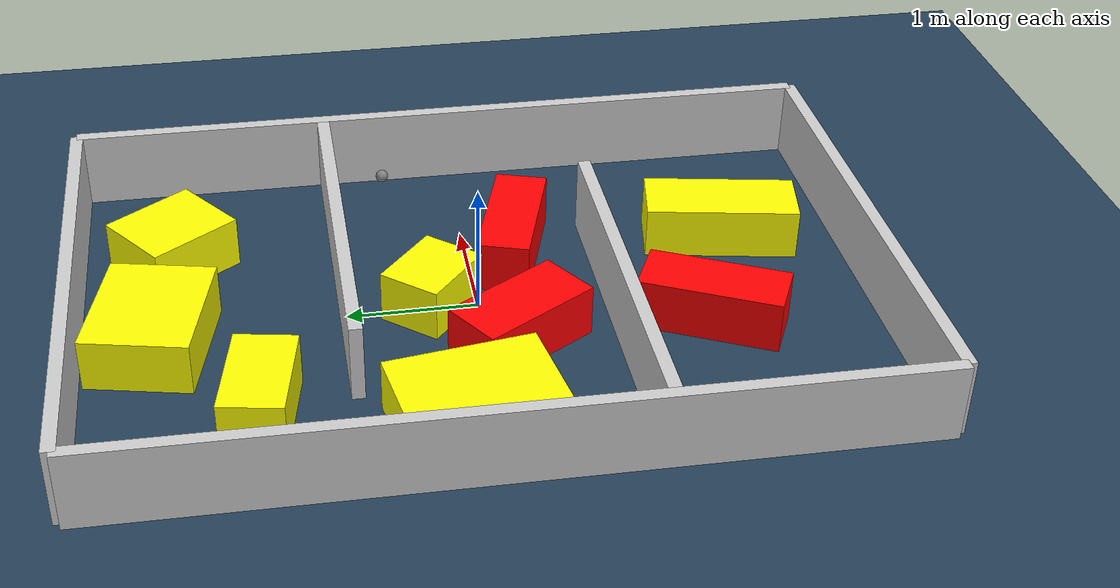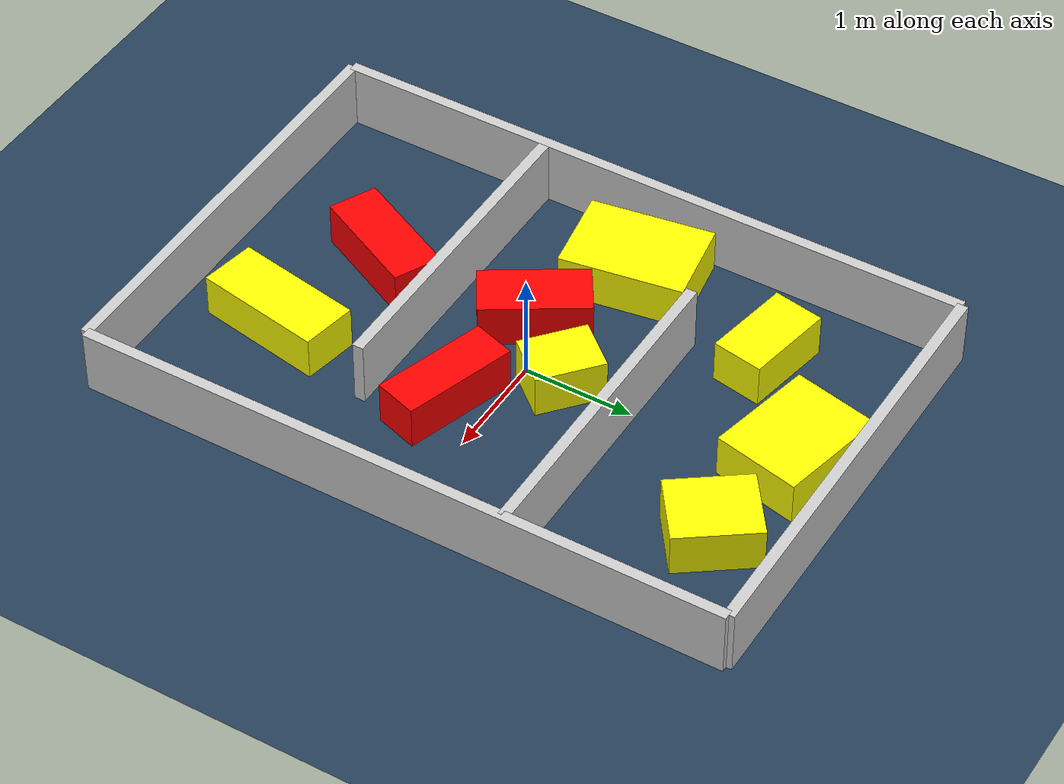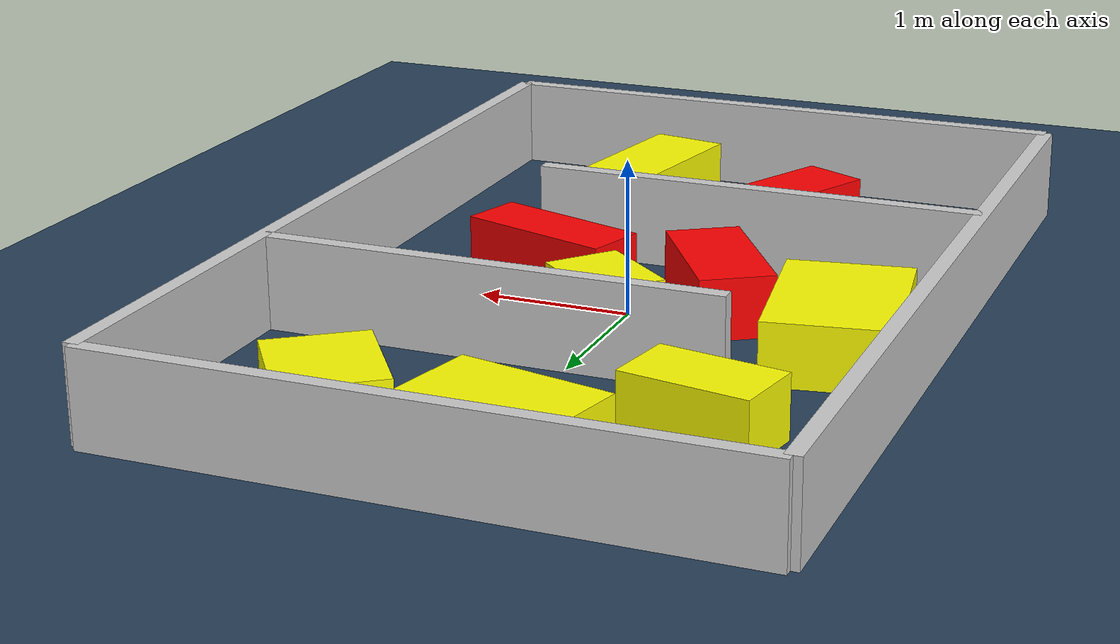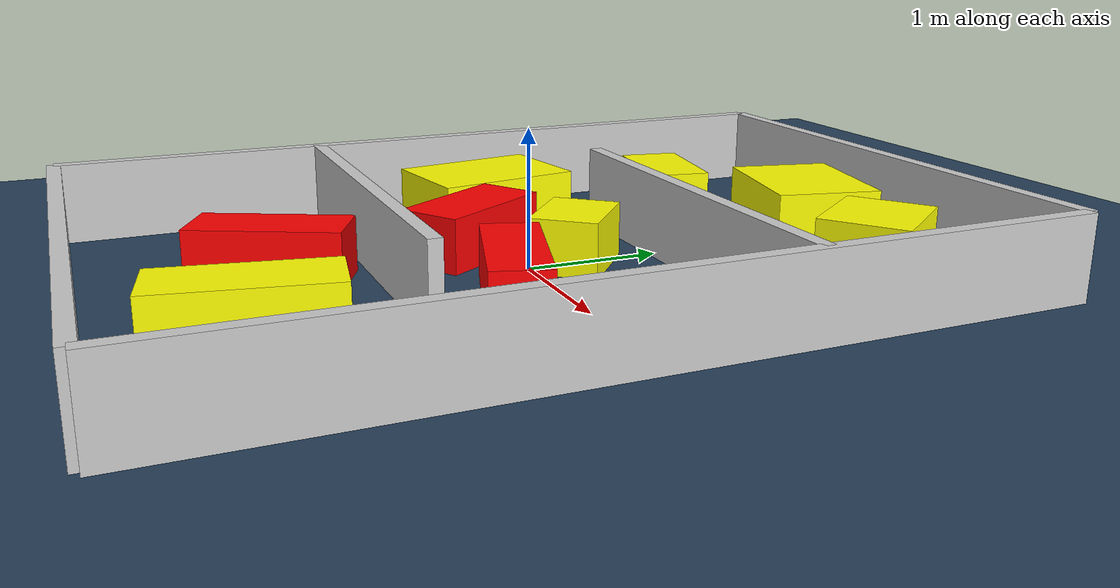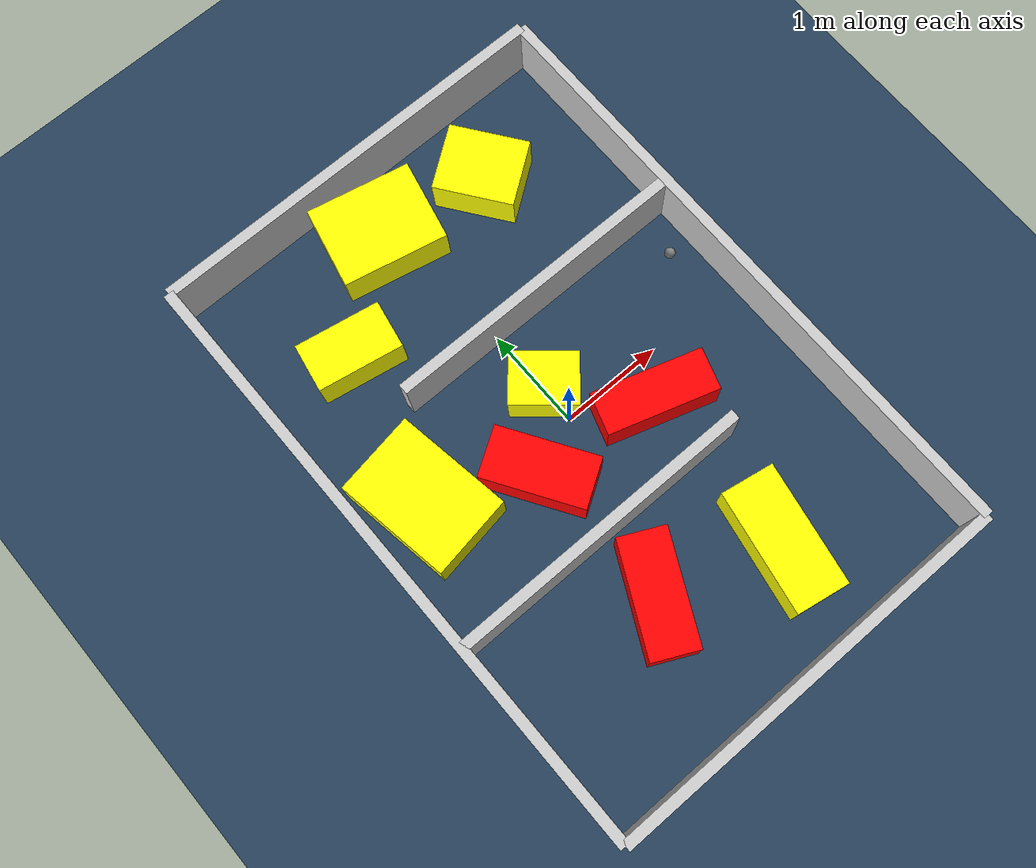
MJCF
<?xml version="1.0" ?>
<mujoco model="generated_environment">
  <option timestep="0.01" integrator="RK4" cone="elliptic"/>
  <default>
    <geom density="1"/>
  </default>
  <asset>
    <texture builtin="gradient" height="3072" rgb1="0.3 0.5 0.7" rgb2="0 0 0" type="skybox" width="512"/>
    <texture builtin="checker" height="300" mark="edge" markrgb="0.8 0.8 0.8" name="groundplane" rgb1="0.2 0.3 0.4" rgb2="0.1 0.2 0.3" type="2d" width="300"/>
    <material name="groundplane" reflectance="0.2" texrepeat="5 5" texture="groundplane" texuniform="true"/>
    <material name="robot" rgba="0.0 1.0 0.0 1"/>
  </asset>
  <worldbody>
    <light dir="0 0 -1" directional="true" pos="0 0 1.5"/>
    <geom condim="4" friction="1.0 0.005 0.001" material="groundplane" name="floor" size="0 0 0.05" type="plane"/>
    <body name="walls">
      <geom name="wall_1" condim="4" pos="-2.0 0.0 0.3" rgba="0.800000011920929 0.800000011920929 0.800000011920929 1.0" size="0.05 3.0 0.3" type="box"/>
      <geom name="wall_2" condim="4" pos="2.0 0.0 0.3" rgba="0.800000011920929 0.800000011920929 0.800000011920929 1.0" size="0.05 3.0 0.3" type="box"/>
      <geom name="wall_3" condim="4" pos="0.0 -3.0 0.3" rgba="0.800000011920929 0.800000011920929 0.800000011920929 1.0" size="2.0 0.05 0.3" type="box"/>
      <geom name="wall_4" condim="4" pos="0.0 3.0 0.3" rgba="0.800000011920929 0.800000011920929 0.800000011920929 1.0" size="2.0 0.05 0.3" type="box"/>
      <geom name="wall_5" condim="4" pos="-0.5 -1.0 0.3" rgba="0.800000011920929 0.800000011920929 0.800000011920929 1.0" size="1.5 0.05 0.3" type="box"/>
      <geom name="wall_6" condim="4" pos="0.5 1.0 0.3" rgba="0.800000011920929 0.800000011920929 0.800000011920929 1.0" size="1.5 0.05 0.3" type="box"/>
    </body>
    <body name="robot">
      <joint name="joint_x" type="slide" pos="0 0 0" axis="1 0 0"/>
      <joint name="joint_y" type="slide" pos="0 0 0" axis="0 1 0"/>
      <geom name="robot" type="sphere" pos="1.6839823661238214 0.5535712925533698 0.2" size="0.05" mass="5." friction="1.0 0.005 0.0001" condim="4"/>
      <site name="sensor_ball"/>
    </body>
    <body name="obstacle_1_static">
      <geom name="obstacle_1_static" condim="4" pos="-0.5238858946448886 -0.2336140645934801 0.2" euler="0 0 122.35438923473197" friction="1.0 0.005 0.001" rgba="1 0 0 1" size="0.48823421547786877 0.24294903973317827 0.2" type="box"/>
    </body>
    <body name="obstacle_2_movable">
      <geom name="obstacle_2_movable" condim="4" pos="0.014823908618599946 0.3494552310827399 0.2" euler="0 0 139.62986088855487" friction="1.0 0.005 0.001" rgba="1 1 0 1" size="0.3156698792109679 0.24678120184868188 0.2" type="box" mass="0.1"/>
      <joint type="free"/>
    </body>
    <body name="obstacle_3_movable">
      <geom name="obstacle_3_movable" condim="4" pos="-1.0907894704716545 1.679964110436234 0.2" euler="0 0 349.7090889707623" friction="1.0 0.005 0.001" rgba="1 1 0 1" size="0.41045406737422674 0.23470114449031235 0.2" type="box" mass="0.1"/>
      <joint type="free"/>
    </body>
    <body name="obstacle_4_static">
      <geom name="obstacle_4_static" condim="4" pos="-0.47225087180689007 -1.6914863433627085 0.2" euler="0 0 63.924551376919354" friction="1.0 0.005 0.001" rgba="1 0 0 1" size="0.5381214131976755 0.227088726640996 0.2" type="box"/>
    </body>
    <body name="obstacle_5_movable">
      <geom name="obstacle_5_movable" condim="4" pos="0.894204706084416 2.263129006214447 0.2" euler="0 0 126.05129276320149" friction="1.0 0.005 0.001" rgba="1 1 0 1" size="0.38236731972005833 0.32232186683933717 0.2" type="box" mass="0.1"/>
      <joint type="free"/>
    </body>
    <body name="obstacle_6_movable">
      <geom name="obstacle_6_movable" condim="4" pos="0.6369901842755665 -2.038726761305102 0.2" euler="0 0 349.83570701557505" friction="1.0 0.005 0.001" rgba="1 1 0 1" size="0.25765869531521335 0.5931324583470796 0.2" type="box" mass="0.1"/>
      <joint type="free"/>
    </body>
    <body name="obstacle_7_static">
      <geom name="obstacle_7_static" condim="4" pos="0.668266697443276 -0.37062016406225995 0.2" euler="0 0 252.3939780542802" friction="1.0 0.005 0.001" rgba="1 0 0 1" size="0.2032558946820799 0.5335040638292676 0.2" type="box"/>
    </body>
    <body name="obstacle_8_movable">
      <geom name="obstacle_8_movable" condim="4" pos="-1.4350608072333069 0.22904168622763743 0.2" euler="0 0 99.08254333054602" friction="1.0 0.005 0.001" rgba="1 1 0 1" size="0.5643664630812457 0.40117385750157664 0.2" type="box" mass="0.1"/>
      <joint type="free"/>
    </body>
    <body name="obstacle_9_movable">
      <geom name="obstacle_9_movable" condim="4" pos="-0.18783227096506527 2.425257538446103 0.2" euler="0 0 347.5979426662433" friction="1.0 0.005 0.001" rgba="1 1 0 1" size="0.5038575286149071 0.3997288960930142 0.2" type="box" mass="0.1"/>
      <joint type="free"/>
    </body>
  </worldbody>
  <actuator>
    <motor name="actuator_x" joint="joint_x" gear="1" ctrlrange="-1 1"/>
    <motor name="actuator_y" joint="joint_y" gear="1" ctrlrange="-1 1"/>
  </actuator>
</mujoco>
